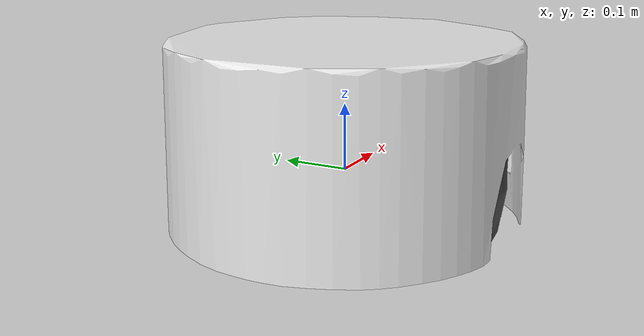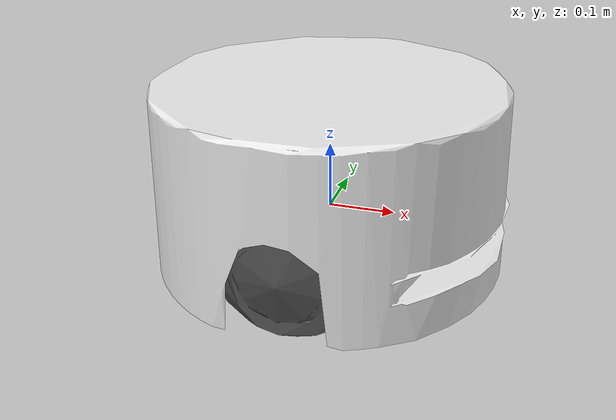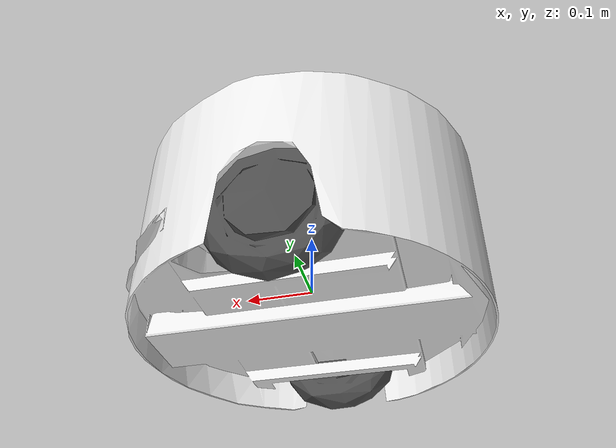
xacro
<?xml version="1.0" ?>

<robot name="tiago" xmlns:xacro="http://www.ros.org/wiki/xacro">

    <xacro:arg name="pmb2_robot_description" default="./../../robot_descriptions/pmb2_robot"/>

    <!-- Base -->
    <link name="base_link">
        <inertial>
            <mass value="28.26649"/>
            <inertia ixx="0.465" ixy="0.002" ixz="-0.001" iyy="0.483" iyz="0" izz="0.55093970"/>
        </inertial>

        <!-- right wheel -->
        <visual>
            <origin rpy="-1.57 0 0" xyz="0 -0.2022 0"/>
            <geometry>
                <mesh filename="$(arg pmb2_robot_description)/meshes/wheels/wheel.stl"/>
            </geometry>
            <material name="DarkGrey"/>
        </visual>

        <!-- left wheel -->
        <visual>
            <origin rpy="1.57 0 0" xyz="0 0.2022 0"/>
            <geometry>
                <mesh filename="$(arg pmb2_robot_description)/meshes/wheels/wheel.stl"/>
            </geometry>
            <material name="DarkGrey"/>
        </visual>

        <!-- body -->
        <visual>
            <geometry>
                <mesh filename="$(arg pmb2_robot_description)/meshes/base/base.stl"/>
            </geometry>
            <material name="White"/>
        </visual>

        <collision>
            <geometry>
                <mesh filename="$(arg pmb2_robot_description)/meshes/base/base_collision.dae"/>
            </geometry>
            <material name="White"/>
        </collision>
    </link>

</robot>
